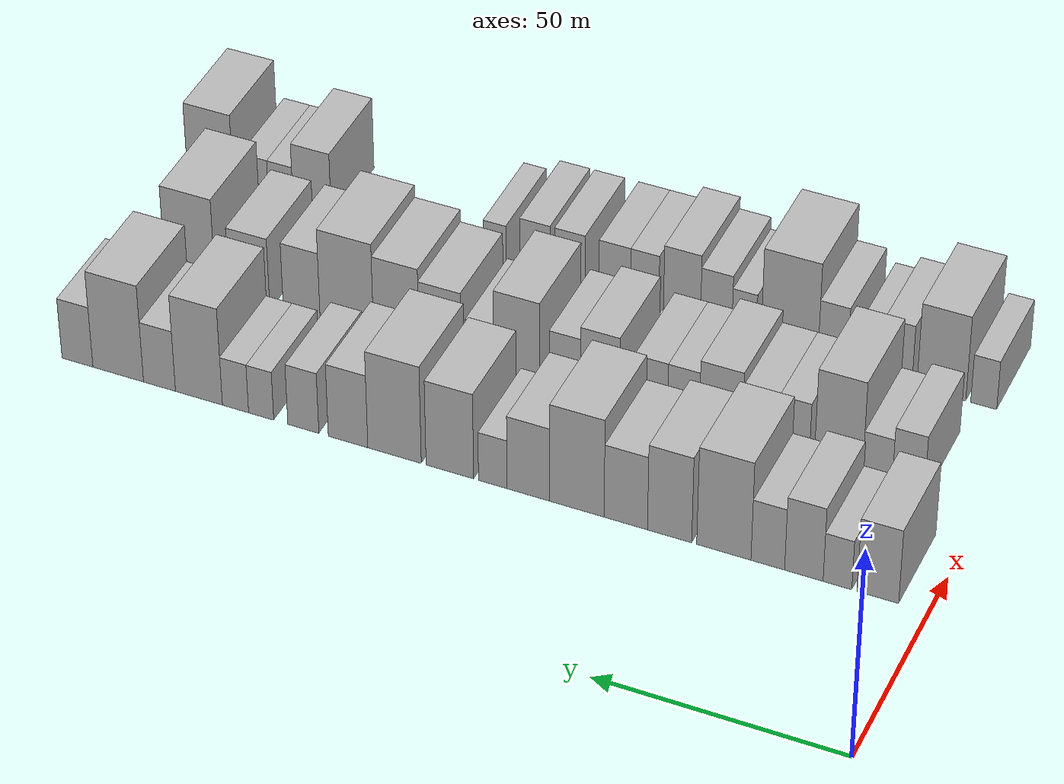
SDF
<sdf version="1.6">
 <world name="default">
  <model name="building_37">
   <static>1</static>
   <pose>50.0000 10.0276 0 0.000000 0.000000 0.000000</pose>
   <link name="link">
    <pose>0 0 9.00 0 0 0</pose>
    <collision name="collision"><geometry><box><size>20.0000 8.1141 18.0000</size></box></geometry></collision>
    <visual name="visual">
     <cast_shadows>0</cast_shadows>
     <geometry><box><size>20.0000 8.1141 18.0000</size></box></geometry>
     <material>
      <script>
       <uri>model://HANNAS_wall/materials/scripts</uri>
       <uri>model://HANNAS_wall/materials/textures</uri>
       <name>vrc/HANNAS_wall</name>
      </script>
     </material>
    </visual>
   </link>
  </model>
  <model name="building_38">
   <static>1</static>
   <pose>50.0000 17.8904 0 0.000000 0.000000 0.000000</pose>
   <link name="link">
    <pose>0 0 6.00 0 0 0</pose>
    <collision name="collision"><geometry><box><size>20.0000 5.6115 12.0000</size></box></geometry></collision>
    <visual name="visual">
     <cast_shadows>0</cast_shadows>
     <geometry><box><size>20.0000 5.6115 12.0000</size></box></geometry>
     <material>
      <script>
       <uri>model://HANNAS_wall/materials/scripts</uri>
       <uri>model://HANNAS_wall/materials/textures</uri>
       <name>vrc/HANNAS_wall</name>
      </script>
     </material>
    </visual>
   </link>
  </model>
  <model name="building_39">
   <static>1</static>
   <pose>50.0000 24.4787 0 0.000000 0.000000 0.000000</pose>
   <link name="link">
    <pose>0 0 9.00 0 0 0</pose>
    <collision name="collision"><geometry><box><size>20.0000 7.5652 18.0000</size></box></geometry></collision>
    <visual name="visual">
     <cast_shadows>0</cast_shadows>
     <geometry><box><size>20.0000 7.5652 18.0000</size></box></geometry>
     <material>
      <script>
       <uri>model://HANNAS_wall/materials/scripts</uri>
       <uri>model://HANNAS_wall/materials/textures</uri>
       <name>vrc/HANNAS_wall</name>
      </script>
     </material>
    </visual>
   </link>
  </model>
  <model name="building_40">
   <static>1</static>
   <pose>50.0000 31.5845 0 0.000000 0.000000 0.000000</pose>
   <link name="link">
    <pose>0 0 7.50 0 0 0</pose>
    <collision name="collision"><geometry><box><size>20.0000 6.6463 15.0000</size></box></geometry></collision>
    <visual name="visual">
     <cast_shadows>0</cast_shadows>
     <geometry><box><size>20.0000 6.6463 15.0000</size></box></geometry>
     <material>
      <script>
       <uri>model://HANNAS_wall/materials/scripts</uri>
       <uri>model://HANNAS_wall/materials/textures</uri>
       <name>vrc/HANNAS_wall</name>
      </script>
     </material>
    </visual>
   </link>
  </model>
  <model name="building_41">
   <static>1</static>
   <pose>50.0000 40.3000 0 0.000000 0.000000 0.000000</pose>
   <link name="link">
    <pose>0 0 12.00 0 0 0</pose>
    <collision name="collision"><geometry><box><size>20.0000 10.7847 24.0000</size></box></geometry></collision>
    <visual name="visual">
     <cast_shadows>0</cast_shadows>
     <geometry><box><size>20.0000 10.7847 24.0000</size></box></geometry>
     <material>
      <script>
       <uri>model://HANNAS_wall/materials/scripts</uri>
       <uri>model://HANNAS_wall/materials/textures</uri>
       <name>vrc/HANNAS_wall</name>
      </script>
     </material>
    </visual>
   </link>
  </model>
  <model name="building_42">
   <static>1</static>
   <pose>50.0000 51.1295 0 0.000000 0.000000 0.000000</pose>
   <link name="link">
    <pose>0 0 10.50 0 0 0</pose>
    <collision name="collision"><geometry><box><size>20.0000 8.8744 21.0000</size></box></geometry></collision>
    <visual name="visual">
     <cast_shadows>0</cast_shadows>
     <geometry><box><size>20.0000 8.8744 21.0000</size></box></geometry>
     <material>
      <script>
       <uri>model://HANNAS_wall/materials/scripts</uri>
       <uri>model://HANNAS_wall/materials/textures</uri>
       <name>vrc/HANNAS_wall</name>
      </script>
     </material>
    </visual>
   </link>
  </model>
  <model name="building_43">
   <static>1</static>
   <pose>50.0000 59.9366 0 0.000000 0.000000 0.000000</pose>
   <link name="link">
    <pose>0 0 9.00 0 0 0</pose>
    <collision name="collision"><geometry><box><size>20.0000 8.7396 18.0000</size></box></geometry></collision>
    <visual name="visual">
     <cast_shadows>0</cast_shadows>
     <geometry><box><size>20.0000 8.7396 18.0000</size></box></geometry>
     <material>
      <script>
       <uri>model://HANNAS_wall/materials/scripts</uri>
       <uri>model://HANNAS_wall/materials/textures</uri>
       <name>vrc/HANNAS_wall</name>
      </script>
     </material>
    </visual>
   </link>
  </model>
  <model name="building_44">
   <static>1</static>
   <pose>50.0000 69.8404 0 0.000000 0.000000 0.000000</pose>
   <link name="link">
    <pose>0 0 12.00 0 0 0</pose>
    <collision name="collision"><geometry><box><size>20.0000 11.0680 24.0000</size></box></geometry></collision>
    <visual name="visual">
     <cast_shadows>0</cast_shadows>
     <geometry><box><size>20.0000 11.0680 24.0000</size></box></geometry>
     <material>
      <script>
       <uri>model://HANNAS_wall/materials/scripts</uri>
       <uri>model://HANNAS_wall/materials/textures</uri>
       <name>vrc/HANNAS_wall</name>
      </script>
     </material>
    </visual>
   </link>
  </model>
  <model name="building_45">
   <static>1</static>
   <pose>50.0000 79.7272 0 0.000000 0.000000 0.000000</pose>
   <link name="link">
    <pose>0 0 9.00 0 0 0</pose>
    <collision name="collision"><geometry><box><size>20.0000 8.7056 18.0000</size></box></geometry></collision>
    <visual name="visual">
     <cast_shadows>0</cast_shadows>
     <geometry><box><size>20.0000 8.7056 18.0000</size></box></geometry>
     <material>
      <script>
       <uri>model://HANNAS_wall/materials/scripts</uri>
       <uri>model://HANNAS_wall/materials/textures</uri>
       <name>vrc/HANNAS_wall</name>
      </script>
     </material>
    </visual>
   </link>
  </model>
  <model name="building_46">
   <static>1</static>
   <pose>50.0000 87.0113 0 0.000000 0.000000 0.000000</pose>
   <link name="link">
    <pose>0 0 6.00 0 0 0</pose>
    <collision name="collision"><geometry><box><size>20.0000 5.8626 12.0000</size></box></geometry></collision>
    <visual name="visual">
     <cast_shadows>0</cast_shadows>
     <geometry><box><size>20.0000 5.8626 12.0000</size></box></geometry>
     <material>
      <script>
       <uri>model://HANNAS_wall/materials/scripts</uri>
       <uri>model://HANNAS_wall/materials/textures</uri>
       <name>vrc/HANNAS_wall</name>
      </script>
     </material>
    </visual>
   </link>
  </model>
  <model name="building_47">
   <static>1</static>
   <pose>50.0000 95.8644 0 0.000000 0.000000 0.000000</pose>
   <link name="link">
    <pose>0 0 10.50 0 0 0</pose>
    <collision name="collision"><geometry><box><size>20.0000 9.8436 21.0000</size></box></geometry></collision>
    <visual name="visual">
     <cast_shadows>0</cast_shadows>
     <geometry><box><size>20.0000 9.8436 21.0000</size></box></geometry>
     <material>
      <script>
       <uri>model://HANNAS_wall/materials/scripts</uri>
       <uri>model://HANNAS_wall/materials/textures</uri>
       <name>vrc/HANNAS_wall</name>
      </script>
     </material>
    </visual>
   </link>
  </model>
  <model name="building_48">
   <static>1</static>
   <pose>50.0000 107.3642 0 0.000000 0.000000 0.000000</pose>
   <link name="link">
    <pose>0 0 12.00 0 0 0</pose>
    <collision name="collision"><geometry><box><size>20.0000 11.1561 24.0000</size></box></geometry></collision>
    <visual name="visual">
     <cast_shadows>0</cast_shadows>
     <geometry><box><size>20.0000 11.1561 24.0000</size></box></geometry>
     <material>
      <script>
       <uri>model://HANNAS_wall/materials/scripts</uri>
       <uri>model://HANNAS_wall/materials/textures</uri>
       <name>vrc/HANNAS_wall</name>
      </script>
     </material>
    </visual>
   </link>
  </model>
  <model name="building_49">
   <static>1</static>
   <pose>50.0000 117.0951 0 0.000000 0.000000 0.000000</pose>
   <link name="link">
    <pose>0 0 9.00 0 0 0</pose>
    <collision name="collision"><geometry><box><size>20.0000 8.3057 18.0000</size></box></geometry></collision>
    <visual name="visual">
     <cast_shadows>0</cast_shadows>
     <geometry><box><size>20.0000 8.3057 18.0000</size></box></geometry>
     <material>
      <script>
       <uri>model://HANNAS_wall/materials/scripts</uri>
       <uri>model://HANNAS_wall/materials/textures</uri>
       <name>vrc/HANNAS_wall</name>
      </script>
     </material>
    </visual>
   </link>
  </model>
  <model name="building_50">
   <static>1</static>
   <pose>50.0000 126.5278 0 0.000000 0.000000 0.000000</pose>
   <link name="link">
    <pose>0 0 7.50 0 0 0</pose>
    <collision name="collision"><geometry><box><size>20.0000 6.5597 15.0000</size></box></geometry></collision>
    <visual name="visual">
     <cast_shadows>0</cast_shadows>
     <geometry><box><size>20.0000 6.5597 15.0000</size></box></geometry>
     <material>
      <script>
       <uri>model://HANNAS_wall/materials/scripts</uri>
       <uri>model://HANNAS_wall/materials/textures</uri>
       <name>vrc/HANNAS_wall</name>
      </script>
     </material>
    </visual>
   </link>
  </model>
  <model name="building_51">
   <static>1</static>
   <pose>50.0000 135.4834 0 0.000000 0.000000 0.000000</pose>
   <link name="link">
    <pose>0 0 6.00 0 0 0</pose>
    <collision name="collision"><geometry><box><size>20.0000 5.3515 12.0000</size></box></geometry></collision>
    <visual name="visual">
     <cast_shadows>0</cast_shadows>
     <geometry><box><size>20.0000 5.3515 12.0000</size></box></geometry>
     <material>
      <script>
       <uri>model://HANNAS_wall/materials/scripts</uri>
       <uri>model://HANNAS_wall/materials/textures</uri>
       <name>vrc/HANNAS_wall</name>
      </script>
     </material>
    </visual>
   </link>
  </model>
  <model name="building_52">
   <static>1</static>
   <pose>50.0000 140.9551 0 0.000000 0.000000 0.000000</pose>
   <link name="link">
    <pose>0 0 6.00 0 0 0</pose>
    <collision name="collision"><geometry><box><size>20.0000 5.5919 12.0000</size></box></geometry></collision>
    <visual name="visual">
     <cast_shadows>0</cast_shadows>
     <geometry><box><size>20.0000 5.5919 12.0000</size></box></geometry>
     <material>
      <script>
       <uri>model://HANNAS_wall/materials/scripts</uri>
       <uri>model://HANNAS_wall/materials/textures</uri>
       <name>vrc/HANNAS_wall</name>
      </script>
     </material>
    </visual>
   </link>
  </model>
  <model name="building_53">
   <static>1</static>
   <pose>50.0000 148.7981 0 0.000000 0.000000 0.000000</pose>
   <link name="link">
    <pose>0 0 12.00 0 0 0</pose>
    <collision name="collision"><geometry><box><size>20.0000 10.0943 24.0000</size></box></geometry></collision>
    <visual name="visual">
     <cast_shadows>0</cast_shadows>
     <geometry><box><size>20.0000 10.0943 24.0000</size></box></geometry>
     <material>
      <script>
       <uri>model://HANNAS_wall/materials/scripts</uri>
       <uri>model://HANNAS_wall/materials/textures</uri>
       <name>vrc/HANNAS_wall</name>
      </script>
     </material>
    </visual>
   </link>
  </model>
  <model name="building_54">
   <static>1</static>
   <pose>50.0000 157.2991 0 0.000000 0.000000 0.000000</pose>
   <link name="link">
    <pose>0 0 7.50 0 0 0</pose>
    <collision name="collision"><geometry><box><size>20.0000 6.9077 15.0000</size></box></geometry></collision>
    <visual name="visual">
     <cast_shadows>0</cast_shadows>
     <geometry><box><size>20.0000 6.9077 15.0000</size></box></geometry>
     <material>
      <script>
       <uri>model://HANNAS_wall/materials/scripts</uri>
       <uri>model://HANNAS_wall/materials/textures</uri>
       <name>vrc/HANNAS_wall</name>
      </script>
     </material>
    </visual>
   </link>
  </model>
  <model name="building_55">
   <static>1</static>
   <pose>50.0000 166.2611 0 0.000000 0.000000 0.000000</pose>
   <link name="link">
    <pose>0 0 12.00 0 0 0</pose>
    <collision name="collision"><geometry><box><size>20.0000 11.0164 24.0000</size></box></geometry></collision>
    <visual name="visual">
     <cast_shadows>0</cast_shadows>
     <geometry><box><size>20.0000 11.0164 24.0000</size></box></geometry>
     <material>
      <script>
       <uri>model://HANNAS_wall/materials/scripts</uri>
       <uri>model://HANNAS_wall/materials/textures</uri>
       <name>vrc/HANNAS_wall</name>
      </script>
     </material>
    </visual>
   </link>
  </model>
  <model name="building_56">
   <static>1</static>
   <pose>50.0000 175.1466 0 0.000000 0.000000 0.000000</pose>
   <link name="link">
    <pose>0 0 7.50 0 0 0</pose>
    <collision name="collision"><geometry><box><size>20.0000 6.7548 15.0000</size></box></geometry></collision>
    <visual name="visual">
     <cast_shadows>0</cast_shadows>
     <geometry><box><size>20.0000 6.7548 15.0000</size></box></geometry>
     <material>
      <script>
       <uri>model://HANNAS_wall/materials/scripts</uri>
       <uri>model://HANNAS_wall/materials/textures</uri>
       <name>vrc/HANNAS_wall</name>
      </script>
     </material>
    </visual>
   </link>
  </model>
  <model name="building_116">
   <static>1</static>
   <pose>79.0000 14.7125 0 0.000000 0.000000 0.000000</pose>
   <link name="link">
    <pose>0 0 7.50 0 0 0</pose>
    <collision name="collision"><geometry><box><size>20.0000 6.4437 15.0000</size></box></geometry></collision>
    <visual name="visual">
     <cast_shadows>0</cast_shadows>
     <geometry><box><size>20.0000 6.4437 15.0000</size></box></geometry>
     <material>
      <script>
       <uri>model://HANNAS_wall/materials/scripts</uri>
       <uri>model://HANNAS_wall/materials/textures</uri>
       <name>vrc/HANNAS_wall</name>
      </script>
     </material>
    </visual>
   </link>
  </model>
  <model name="building_117">
   <static>1</static>
   <pose>79.0000 20.9096 0 0.000000 0.000000 0.000000</pose>
   <link name="link">
    <pose>0 0 6.00 0 0 0</pose>
    <collision name="collision"><geometry><box><size>20.0000 5.9505 12.0000</size></box></geometry></collision>
    <visual name="visual">
     <cast_shadows>0</cast_shadows>
     <geometry><box><size>20.0000 5.9505 12.0000</size></box></geometry>
     <material>
      <script>
       <uri>model://HANNAS_wall/materials/scripts</uri>
       <uri>model://HANNAS_wall/materials/textures</uri>
       <name>vrc/HANNAS_wall</name>
      </script>
     </material>
    </visual>
   </link>
  </model>
  <model name="building_118">
   <static>1</static>
   <pose>79.0000 28.7317 0 0.000000 0.000000 0.000000</pose>
   <link name="link">
    <pose>0 0 12.00 0 0 0</pose>
    <collision name="collision"><geometry><box><size>20.0000 9.6936 24.0000</size></box></geometry></collision>
    <visual name="visual">
     <cast_shadows>0</cast_shadows>
     <geometry><box><size>20.0000 9.6936 24.0000</size></box></geometry>
     <material>
      <script>
       <uri>model://HANNAS_wall/materials/scripts</uri>
       <uri>model://HANNAS_wall/materials/textures</uri>
       <name>vrc/HANNAS_wall</name>
      </script>
     </material>
    </visual>
   </link>
  </model>
  <model name="building_119">
   <static>1</static>
   <pose>79.0000 37.7924 0 0.000000 0.000000 0.000000</pose>
   <link name="link">
    <pose>0 0 7.50 0 0 0</pose>
    <collision name="collision"><geometry><box><size>20.0000 6.4278 15.0000</size></box></geometry></collision>
    <visual name="visual">
     <cast_shadows>0</cast_shadows>
     <geometry><box><size>20.0000 6.4278 15.0000</size></box></geometry>
     <material>
      <script>
       <uri>model://HANNAS_wall/materials/scripts</uri>
       <uri>model://HANNAS_wall/materials/textures</uri>
       <name>vrc/HANNAS_wall</name>
      </script>
     </material>
    </visual>
   </link>
  </model>
  <model name="building_120">
   <static>1</static>
   <pose>79.0000 44.6051 0 0.000000 0.000000 0.000000</pose>
   <link name="link">
    <pose>0 0 7.50 0 0 0</pose>
    <collision name="collision"><geometry><box><size>20.0000 7.1976 15.0000</size></box></geometry></collision>
    <visual name="visual">
     <cast_shadows>0</cast_shadows>
     <geometry><box><size>20.0000 7.1976 15.0000</size></box></geometry>
     <material>
      <script>
       <uri>model://HANNAS_wall/materials/scripts</uri>
       <uri>model://HANNAS_wall/materials/textures</uri>
       <name>vrc/HANNAS_wall</name>
      </script>
     </material>
    </visual>
   </link>
  </model>
  <model name="building_121">
   <static>1</static>
   <pose>79.0000 52.5953 0 0.000000 0.000000 0.000000</pose>
   <link name="link">
    <pose>0 0 9.00 0 0 0</pose>
    <collision name="collision"><geometry><box><size>20.0000 8.7830 18.0000</size></box></geometry></collision>
    <visual name="visual">
     <cast_shadows>0</cast_shadows>
     <geometry><box><size>20.0000 8.7830 18.0000</size></box></geometry>
     <material>
      <script>
       <uri>model://HANNAS_wall/materials/scripts</uri>
       <uri>model://HANNAS_wall/materials/textures</uri>
       <name>vrc/HANNAS_wall</name>
      </script>
     </material>
    </visual>
   </link>
  </model>
  <model name="building_122">
   <static>1</static>
   <pose>79.0000 60.2500 0 0.000000 0.000000 0.000000</pose>
   <link name="link">
    <pose>0 0 7.50 0 0 0</pose>
    <collision name="collision"><geometry><box><size>20.0000 6.5264 15.0000</size></box></geometry></collision>
    <visual name="visual">
     <cast_shadows>0</cast_shadows>
     <geometry><box><size>20.0000 6.5264 15.0000</size></box></geometry>
     <material>
      <script>
       <uri>model://HANNAS_wall/materials/scripts</uri>
       <uri>model://HANNAS_wall/materials/textures</uri>
       <name>vrc/HANNAS_wall</name>
      </script>
     </material>
    </visual>
   </link>
  </model>
  <model name="building_123">
   <static>1</static>
   <pose>79.0000 66.9723 0 0.000000 0.000000 0.000000</pose>
   <link name="link">
    <pose>0 0 7.50 0 0 0</pose>
    <collision name="collision"><geometry><box><size>20.0000 6.9181 15.0000</size></box></geometry></collision>
    <visual name="visual">
     <cast_shadows>0</cast_shadows>
     <geometry><box><size>20.0000 6.9181 15.0000</size></box></geometry>
     <material>
      <script>
       <uri>model://HANNAS_wall/materials/scripts</uri>
       <uri>model://HANNAS_wall/materials/textures</uri>
       <name>vrc/HANNAS_wall</name>
      </script>
     </material>
    </visual>
   </link>
  </model>
  <model name="building_124">
   <static>1</static>
   <pose>79.0000 77.4950 0 0.000000 0.000000 0.000000</pose>
   <link name="link">
    <pose>0 0 9.00 0 0 0</pose>
    <collision name="collision"><geometry><box><size>20.0000 8.1275 18.0000</size></box></geometry></collision>
    <visual name="visual">
     <cast_shadows>0</cast_shadows>
     <geometry><box><size>20.0000 8.1275 18.0000</size></box></geometry>
     <material>
      <script>
       <uri>model://HANNAS_wall/materials/scripts</uri>
       <uri>model://HANNAS_wall/materials/textures</uri>
       <name>vrc/HANNAS_wall</name>
      </script>
     </material>
    </visual>
   </link>
  </model>
  <model name="building_125">
   <static>1</static>
   <pose>79.0000 84.8039 0 0.000000 0.000000 0.000000</pose>
   <link name="link">
    <pose>0 0 7.50 0 0 0</pose>
    <collision name="collision"><geometry><box><size>20.0000 6.4903 15.0000</size></box></geometry></collision>
    <visual name="visual">
     <cast_shadows>0</cast_shadows>
     <geometry><box><size>20.0000 6.4903 15.0000</size></box></geometry>
     <material>
      <script>
       <uri>model://HANNAS_wall/materials/scripts</uri>
       <uri>model://HANNAS_wall/materials/textures</uri>
       <name>vrc/HANNAS_wall</name>
      </script>
     </material>
    </visual>
   </link>
  </model>
  <model name="building_126">
   <static>1</static>
   <pose>79.0000 94.8826 0 0.000000 0.000000 0.000000</pose>
   <link name="link">
    <pose>0 0 10.50 0 0 0</pose>
    <collision name="collision"><geometry><box><size>20.0000 9.6670 21.0000</size></box></geometry></collision>
    <visual name="visual">
     <cast_shadows>0</cast_shadows>
     <geometry><box><size>20.0000 9.6670 21.0000</size></box></geometry>
     <material>
      <script>
       <uri>model://HANNAS_wall/materials/scripts</uri>
       <uri>model://HANNAS_wall/materials/textures</uri>
       <name>vrc/HANNAS_wall</name>
      </script>
     </material>
    </visual>
   </link>
  </model>
  <model name="building_127">
   <static>1</static>
   <pose>79.0000 102.6740 0 0.000000 0.000000 0.000000</pose>
   <link name="link">
    <pose>0 0 6.00 0 0 0</pose>
    <collision name="collision"><geometry><box><size>20.0000 5.9159 12.0000</size></box></geometry></collision>
    <visual name="visual">
     <cast_shadows>0</cast_shadows>
     <geometry><box><size>20.0000 5.9159 12.0000</size></box></geometry>
     <material>
      <script>
       <uri>model://HANNAS_wall/materials/scripts</uri>
       <uri>model://HANNAS_wall/materials/textures</uri>
       <name>vrc/HANNAS_wall</name>
      </script>
     </material>
    </visual>
   </link>
  </model>
  <model name="building_128">
   <static>1</static>
   <pose>79.0000 111.1067 0 0.000000 0.000000 0.000000</pose>
   <link name="link">
    <pose>0 0 9.00 0 0 0</pose>
    <collision name="collision"><geometry><box><size>20.0000 8.9495 18.0000</size></box></geometry></collision>
    <visual name="visual">
     <cast_shadows>0</cast_shadows>
     <geometry><box><size>20.0000 8.9495 18.0000</size></box></geometry>
     <material>
      <script>
       <uri>model://HANNAS_wall/materials/scripts</uri>
       <uri>model://HANNAS_wall/materials/textures</uri>
       <name>vrc/HANNAS_wall</name>
      </script>
     </material>
    </visual>
   </link>
  </model>
  <model name="building_129">
   <static>1</static>
   <pose>79.0000 120.4599 0 0.000000 0.000000 0.000000</pose>
   <link name="link">
    <pose>0 0 10.50 0 0 0</pose>
    <collision name="collision"><geometry><box><size>20.0000 9.7569 21.0000</size></box></geometry></collision>
    <visual name="visual">
     <cast_shadows>0</cast_shadows>
     <geometry><box><size>20.0000 9.7569 21.0000</size></box></geometry>
     <material>
      <script>
       <uri>model://HANNAS_wall/materials/scripts</uri>
       <uri>model://HANNAS_wall/materials/textures</uri>
       <name>vrc/HANNAS_wall</name>
      </script>
     </material>
    </visual>
   </link>
  </model>
  <model name="building_130">
   <static>1</static>
   <pose>79.0000 131.1184 0 0.000000 0.000000 0.000000</pose>
   <link name="link">
    <pose>0 0 12.00 0 0 0</pose>
    <collision name="collision"><geometry><box><size>20.0000 11.5601 24.0000</size></box></geometry></collision>
    <visual name="visual">
     <cast_shadows>0</cast_shadows>
     <geometry><box><size>20.0000 11.5601 24.0000</size></box></geometry>
     <material>
      <script>
       <uri>model://HANNAS_wall/materials/scripts</uri>
       <uri>model://HANNAS_wall/materials/textures</uri>
       <name>vrc/HANNAS_wall</name>
      </script>
     </material>
    </visual>
   </link>
  </model>
  <model name="building_131">
   <static>1</static>
   <pose>79.0000 140.8996 0 0.000000 0.000000 0.000000</pose>
   <link name="link">
    <pose>0 0 9.00 0 0 0</pose>
    <collision name="collision"><geometry><box><size>20.0000 8.0022 18.0000</size></box></geometry></collision>
    <visual name="visual">
     <cast_shadows>0</cast_shadows>
     <geometry><box><size>20.0000 8.0022 18.0000</size></box></geometry>
     <material>
      <script>
       <uri>model://HANNAS_wall/materials/scripts</uri>
       <uri>model://HANNAS_wall/materials/textures</uri>
       <name>vrc/HANNAS_wall</name>
      </script>
     </material>
    </visual>
   </link>
  </model>
  <model name="building_132">
   <static>1</static>
   <pose>79.0000 152.3208 0 0.000000 0.000000 0.000000</pose>
   <link name="link">
    <pose>0 0 9.00 0 0 0</pose>
    <collision name="collision"><geometry><box><size>20.0000 8.8401 18.0000</size></box></geometry></collision>
    <visual name="visual">
     <cast_shadows>0</cast_shadows>
     <geometry><box><size>20.0000 8.8401 18.0000</size></box></geometry>
     <material>
      <script>
       <uri>model://HANNAS_wall/materials/scripts</uri>
       <uri>model://HANNAS_wall/materials/textures</uri>
       <name>vrc/HANNAS_wall</name>
      </script>
     </material>
    </visual>
   </link>
  </model>
  <model name="building_133">
   <static>1</static>
   <pose>79.0000 165.2848 0 0.000000 0.000000 0.000000</pose>
   <link name="link">
    <pose>0 0 12.00 0 0 0</pose>
    <collision name="collision"><geometry><box><size>20.0000 11.0878 24.0000</size></box></geometry></collision>
    <visual name="visual">
     <cast_shadows>0</cast_shadows>
     <geometry><box><size>20.0000 11.0878 24.0000</size></box></geometry>
     <material>
      <script>
       <uri>model://HANNAS_wall/materials/scripts</uri>
       <uri>model://HANNAS_wall/materials/textures</uri>
       <name>vrc/HANNAS_wall</name>
      </script>
     </material>
    </visual>
   </link>
  </model>
  <model name="building_190">
   <static>1</static>
   <pose>108.0000 9.8619 0 0.000000 0.000000 0.000000</pose>
   <link name="link">
    <pose>0 0 6.00 0 0 0</pose>
    <collision name="collision"><geometry><box><size>20.0000 5.2677 12.0000</size></box></geometry></collision>
    <visual name="visual">
     <cast_shadows>0</cast_shadows>
     <geometry><box><size>20.0000 5.2677 12.0000</size></box></geometry>
     <material>
      <script>
       <uri>model://HANNAS_wall/materials/scripts</uri>
       <uri>model://HANNAS_wall/materials/textures</uri>
       <name>vrc/HANNAS_wall</name>
      </script>
     </material>
    </visual>
   </link>
  </model>
  <model name="building_191">
   <static>1</static>
   <pose>108.0000 18.4906 0 0.000000 0.000000 0.000000</pose>
   <link name="link">
    <pose>0 0 10.50 0 0 0</pose>
    <collision name="collision"><geometry><box><size>20.0000 9.9896 21.0000</size></box></geometry></collision>
    <visual name="visual">
     <cast_shadows>0</cast_shadows>
     <geometry><box><size>20.0000 9.9896 21.0000</size></box></geometry>
     <material>
      <script>
       <uri>model://HANNAS_wall/materials/scripts</uri>
       <uri>model://HANNAS_wall/materials/textures</uri>
       <name>vrc/HANNAS_wall</name>
      </script>
     </material>
    </visual>
   </link>
  </model>
  <model name="building_192">
   <static>1</static>
   <pose>108.0000 27.5947 0 0.000000 0.000000 0.000000</pose>
   <link name="link">
    <pose>0 0 7.50 0 0 0</pose>
    <collision name="collision"><geometry><box><size>20.0000 6.2185 15.0000</size></box></geometry></collision>
    <visual name="visual">
     <cast_shadows>0</cast_shadows>
     <geometry><box><size>20.0000 6.2185 15.0000</size></box></geometry>
     <material>
      <script>
       <uri>model://HANNAS_wall/materials/scripts</uri>
       <uri>model://HANNAS_wall/materials/textures</uri>
       <name>vrc/HANNAS_wall</name>
      </script>
     </material>
    </visual>
   </link>
  </model>
  <model name="building_193">
   <static>1</static>
   <pose>108.0000 33.2104 0 0.000000 0.000000 0.000000</pose>
   <link name="link">
    <pose>0 0 6.00 0 0 0</pose>
    <collision name="collision"><geometry><box><size>20.0000 5.0129 12.0000</size></box></geometry></collision>
    <visual name="visual">
     <cast_shadows>0</cast_shadows>
     <geometry><box><size>20.0000 5.0129 12.0000</size></box></geometry>
     <material>
      <script>
       <uri>model://HANNAS_wall/materials/scripts</uri>
       <uri>model://HANNAS_wall/materials/textures</uri>
       <name>vrc/HANNAS_wall</name>
      </script>
     </material>
    </visual>
   </link>
  </model>
  <model name="building_194">
   <static>1</static>
   <pose>108.0000 40.7879 0 0.000000 0.000000 0.000000</pose>
   <link name="link">
    <pose>0 0 7.50 0 0 0</pose>
    <collision name="collision"><geometry><box><size>20.0000 6.1422 15.0000</size></box></geometry></collision>
    <visual name="visual">
     <cast_shadows>0</cast_shadows>
     <geometry><box><size>20.0000 6.1422 15.0000</size></box></geometry>
     <material>
      <script>
       <uri>model://HANNAS_wall/materials/scripts</uri>
       <uri>model://HANNAS_wall/materials/textures</uri>
       <name>vrc/HANNAS_wall</name>
      </script>
     </material>
    </visual>
   </link>
  </model>
  <model name="building_195">
   <static>1</static>
   <pose>108.0000 49.7895 0 0.000000 0.000000 0.000000</pose>
   <link name="link">
    <pose>0 0 12.00 0 0 0</pose>
    <collision name="collision"><geometry><box><size>20.0000 11.8610 24.0000</size></box></geometry></collision>
    <visual name="visual">
     <cast_shadows>0</cast_shadows>
     <geometry><box><size>20.0000 11.8610 24.0000</size></box></geometry>
     <material>
      <script>
       <uri>model://HANNAS_wall/materials/scripts</uri>
       <uri>model://HANNAS_wall/materials/textures</uri>
       <name>vrc/HANNAS_wall</name>
      </script>
     </material>
    </visual>
   </link>
  </model>
  <model name="building_196">
   <static>1</static>
   <pose>108.0000 59.2820 0 0.000000 0.000000 0.000000</pose>
   <link name="link">
    <pose>0 0 6.00 0 0 0</pose>
    <collision name="collision"><geometry><box><size>20.0000 5.1239 12.0000</size></box></geometry></collision>
    <visual name="visual">
     <cast_shadows>0</cast_shadows>
     <geometry><box><size>20.0000 5.1239 12.0000</size></box></geometry>
     <material>
      <script>
       <uri>model://HANNAS_wall/materials/scripts</uri>
       <uri>model://HANNAS_wall/materials/textures</uri>
       <name>vrc/HANNAS_wall</name>
      </script>
     </material>
    </visual>
   </link>
  </model>
  <model name="building_197">
   <static>1</static>
   <pose>108.0000 65.1525 0 0.000000 0.000000 0.000000</pose>
   <link name="link">
    <pose>0 0 7.50 0 0 0</pose>
    <collision name="collision"><geometry><box><size>20.0000 6.6170 15.0000</size></box></geometry></collision>
    <visual name="visual">
     <cast_shadows>0</cast_shadows>
     <geometry><box><size>20.0000 6.6170 15.0000</size></box></geometry>
     <material>
      <script>
       <uri>model://HANNAS_wall/materials/scripts</uri>
       <uri>model://HANNAS_wall/materials/textures</uri>
       <name>vrc/HANNAS_wall</name>
      </script>
     </material>
    </visual>
   </link>
  </model>
  <model name="building_198">
   <static>1</static>
   <pose>108.0000 72.3671 0 0.000000 0.000000 0.000000</pose>
   <link name="link">
    <pose>0 0 9.00 0 0 0</pose>
    <collision name="collision"><geometry><box><size>20.0000 7.8123 18.0000</size></box></geometry></collision>
    <visual name="visual">
     <cast_shadows>0</cast_shadows>
     <geometry><box><size>20.0000 7.8123 18.0000</size></box></geometry>
     <material>
      <script>
       <uri>model://HANNAS_wall/materials/scripts</uri>
       <uri>model://HANNAS_wall/materials/textures</uri>
       <name>vrc/HANNAS_wall</name>
      </script>
     </material>
    </visual>
   </link>
  </model>
  <model name="building_199">
   <static>1</static>
   <pose>108.0000 80.2965 0 0.000000 0.000000 0.000000</pose>
   <link name="link">
    <pose>0 0 7.50 0 0 0</pose>
    <collision name="collision"><geometry><box><size>20.0000 6.0464 15.0000</size></box></geometry></collision>
    <visual name="visual">
     <cast_shadows>0</cast_shadows>
     <geometry><box><size>20.0000 6.0464 15.0000</size></box></geometry>
     <material>
      <script>
       <uri>model://HANNAS_wall/materials/scripts</uri>
       <uri>model://HANNAS_wall/materials/textures</uri>
       <name>vrc/HANNAS_wall</name>
      </script>
     </material>
    </visual>
   </link>
  </model>
  <model name="building_200">
   <static>1</static>
   <pose>108.0000 86.6601 0 0.000000 0.000000 0.000000</pose>
   <link name="link">
    <pose>0 0 7.50 0 0 0</pose>
    <collision name="collision"><geometry><box><size>20.0000 6.6808 15.0000</size></box></geometry></collision>
    <visual name="visual">
     <cast_shadows>0</cast_shadows>
     <geometry><box><size>20.0000 6.6808 15.0000</size></box></geometry>
     <material>
      <script>
       <uri>model://HANNAS_wall/materials/scripts</uri>
       <uri>model://HANNAS_wall/materials/textures</uri>
       <name>vrc/HANNAS_wall</name>
      </script>
     </material>
    </visual>
   </link>
  </model>
  <model name="building_201">
   <static>1</static>
   <pose>108.0000 96.2511 0 0.000000 0.000000 0.000000</pose>
   <link name="link">
    <pose>0 0 7.50 0 0 0</pose>
    <collision name="collision"><geometry><box><size>20.0000 6.5013 15.0000</size></box></geometry></collision>
    <visual name="visual">
     <cast_shadows>0</cast_shadows>
     <geometry><box><size>20.0000 6.5013 15.0000</size></box></geometry>
     <material>
      <script>
       <uri>model://HANNAS_wall/materials/scripts</uri>
       <uri>model://HANNAS_wall/materials/textures</uri>
       <name>vrc/HANNAS_wall</name>
      </script>
     </material>
    </visual>
   </link>
  </model>
  <model name="building_202">
   <static>1</static>
   <pose>108.0000 103.7430 0 0.000000 0.000000 0.000000</pose>
   <link name="link">
    <pose>0 0 7.50 0 0 0</pose>
    <collision name="collision"><geometry><box><size>20.0000 6.4826 15.0000</size></box></geometry></collision>
    <visual name="visual">
     <cast_shadows>0</cast_shadows>
     <geometry><box><size>20.0000 6.4826 15.0000</size></box></geometry>
     <material>
      <script>
       <uri>model://HANNAS_wall/materials/scripts</uri>
       <uri>model://HANNAS_wall/materials/textures</uri>
       <name>vrc/HANNAS_wall</name>
      </script>
     </material>
    </visual>
   </link>
  </model>
  <model name="building_203">
   <static>1</static>
   <pose>108.0000 112.4257 0 0.000000 0.000000 0.000000</pose>
   <link name="link">
    <pose>0 0 6.00 0 0 0</pose>
    <collision name="collision"><geometry><box><size>20.0000 4.8827 12.0000</size></box></geometry></collision>
    <visual name="visual">
     <cast_shadows>0</cast_shadows>
     <geometry><box><size>20.0000 4.8827 12.0000</size></box></geometry>
     <material>
      <script>
       <uri>model://HANNAS_wall/materials/scripts</uri>
       <uri>model://HANNAS_wall/materials/textures</uri>
       <name>vrc/HANNAS_wall</name>
      </script>
     </material>
    </visual>
   </link>
  </model>
  <model name="building_204">
   <static>1</static>
   <pose>108.0000 152.6121 0 0.000000 0.000000 0.000000</pose>
   <link name="link">
    <pose>0 0 9.00 0 0 0</pose>
    <collision name="collision"><geometry><box><size>20.0000 8.4967 18.0000</size></box></geometry></collision>
    <visual name="visual">
     <cast_shadows>0</cast_shadows>
     <geometry><box><size>20.0000 8.4967 18.0000</size></box></geometry>
     <material>
      <script>
       <uri>model://HANNAS_wall/materials/scripts</uri>
       <uri>model://HANNAS_wall/materials/textures</uri>
       <name>vrc/HANNAS_wall</name>
      </script>
     </material>
    </visual>
   </link>
  </model>
  <model name="building_205">
   <static>1</static>
   <pose>108.0000 159.6238 0 0.000000 0.000000 0.000000</pose>
   <link name="link">
    <pose>0 0 6.00 0 0 0</pose>
    <collision name="collision"><geometry><box><size>20.0000 5.5266 12.0000</size></box></geometry></collision>
    <visual name="visual">
     <cast_shadows>0</cast_shadows>
     <geometry><box><size>20.0000 5.5266 12.0000</size></box></geometry>
     <material>
      <script>
       <uri>model://HANNAS_wall/materials/scripts</uri>
       <uri>model://HANNAS_wall/materials/textures</uri>
       <name>vrc/HANNAS_wall</name>
      </script>
     </material>
    </visual>
   </link>
  </model>
  <model name="building_206">
   <static>1</static>
   <pose>108.0000 165.3242 0 0.000000 0.000000 0.000000</pose>
   <link name="link">
    <pose>0 0 6.00 0 0 0</pose>
    <collision name="collision"><geometry><box><size>20.0000 5.8741 12.0000</size></box></geometry></collision>
    <visual name="visual">
     <cast_shadows>0</cast_shadows>
     <geometry><box><size>20.0000 5.8741 12.0000</size></box></geometry>
     <material>
      <script>
       <uri>model://HANNAS_wall/materials/scripts</uri>
       <uri>model://HANNAS_wall/materials/textures</uri>
       <name>vrc/HANNAS_wall</name>
      </script>
     </material>
    </visual>
   </link>
  </model>
  <model name="building_207">
   <static>1</static>
   <pose>108.0000 175.4608 0 0.000000 0.000000 0.000000</pose>
   <link name="link">
    <pose>0 0 10.50 0 0 0</pose>
    <collision name="collision"><geometry><box><size>20.0000 10.3992 21.0000</size></box></geometry></collision>
    <visual name="visual">
     <cast_shadows>0</cast_shadows>
     <geometry><box><size>20.0000 10.3992 21.0000</size></box></geometry>
     <material>
      <script>
       <uri>model://HANNAS_wall/materials/scripts</uri>
       <uri>model://HANNAS_wall/materials/textures</uri>
       <name>vrc/HANNAS_wall</name>
      </script>
     </material>
    </visual>
   </link>
  </model>
 </world>
</sdf>
